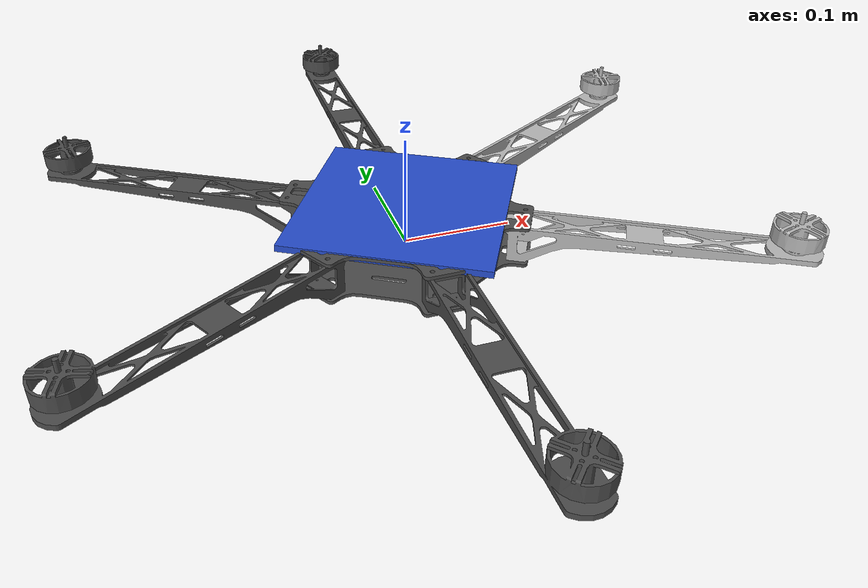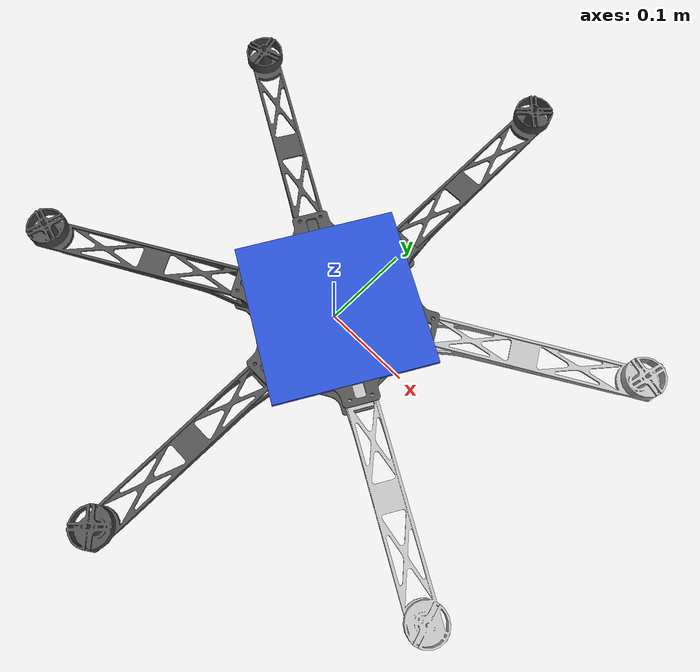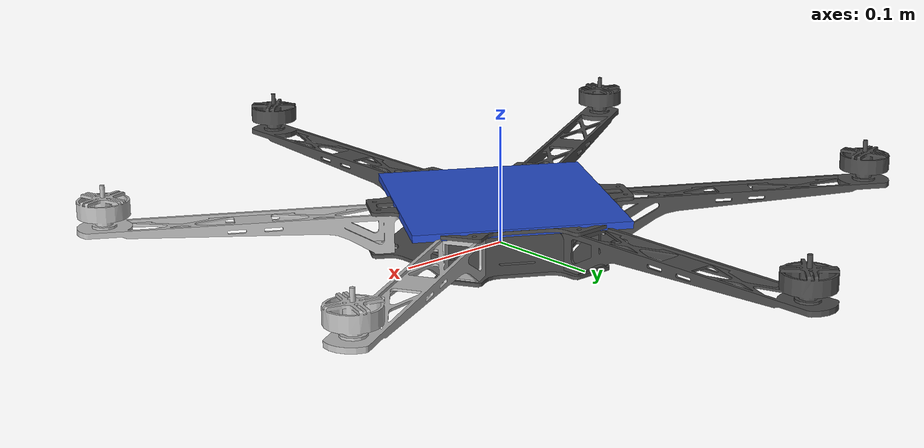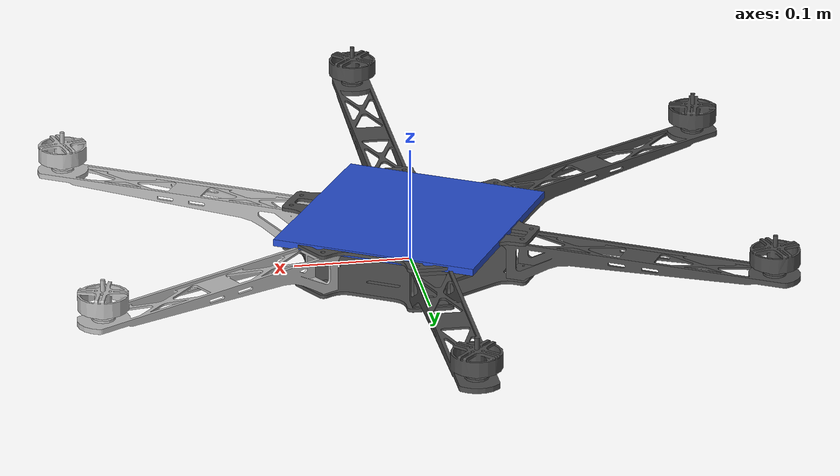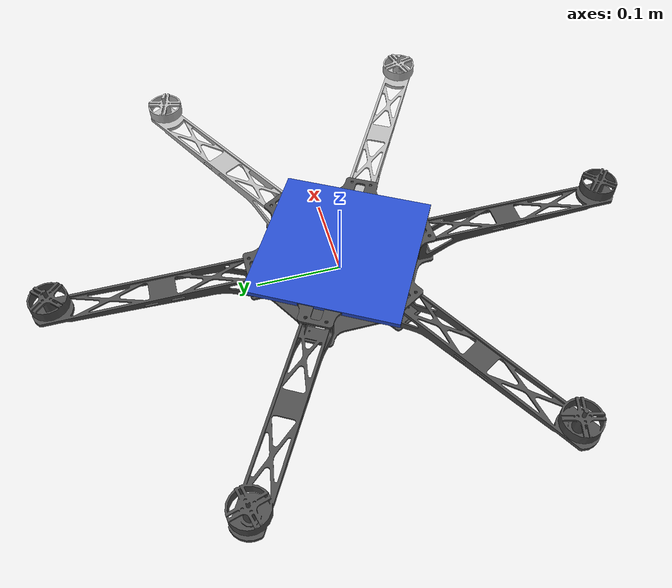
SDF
<?xml version="1.0" ?>
<sdf version="1.5">
  <model name="f550_amazing_dead_blue">
    <static>false</static>
    <pose>0 0 0 0 0 0</pose>

<!-- ######################################## LOWER_PLATE # ######################################## -->
    <link name="base_link">
	<gravity>true</gravity>
	<pose>0 0 0.0015 0 0 0</pose>

      <inertial>
        <mass>0.01</mass>
        <inertia>
          <ixx>0.01</ixx>
          <ixy>0</ixy>
          <ixz>0</ixz>
          <iyy>0.01</iyy>
          <iyz>0</iyz>
          <izz>0.01</izz>
        </inertia>
      </inertial>

      <collision name="base_link_collision">
		<pose>0 0 -0.01 0 0 0</pose>
        <geometry>
			<box>
				<size>0.179 0.179 0.003</size>
			</box>
        </geometry>
			<surface>
				<friction>
					<ode>
						<mu>1</mu>
						<mu2>1</mu2>
					</ode>
				</friction>
				<contact>
					<ode>
						<min_depth>0.001</min_depth>
					</ode>
				</contact>
			</surface>
      </collision>

      <visual name="base_link_visual">
        <geometry>
          <mesh>
            <scale>0.001 0.001 0.001</scale>
            <uri>model://f550_amazing/meshes/Lower_plate_CG.STL</uri>
          </mesh>
        </geometry>
        <material>
          <script>
            <name>Gazebo/DarkGrey</name>
            <uri>file://media/materials/scripts/gazebo.material</uri>
          </script>
        </material>
      </visual>
    </link>
<!-- ####################################### /LOWER_PLATE # ######################################## -->

<!-- ######################################## TOP_PLATE ############################################ -->
    <link name="Top_plate_link">
	<gravity>true</gravity>
	<pose>0 0 0.0375 0 0 2.09439510239</pose>

      <inertial>
        <mass>0.01</mass>
        <inertia>
          <ixx>0.01</ixx>
          <ixy>0</ixy>
          <ixz>0</ixz>
          <iyy>0.01</iyy>
          <iyz>0</iyz>
          <izz>0.01</izz>
        </inertia>
      </inertial>

      <collision name="collision_Top_plate">
        <geometry>
        <mesh>
            <scale>0.001 0.001 0.001</scale>
            <uri>model://f550_amazing/meshes/Top_plate_CG.STL</uri>
          </mesh>
        </geometry>
			<surface>
				<friction>
					<ode>
						<mu>1</mu>
						<mu2>1</mu2>
					</ode>
				</friction>
				<contact>
					<ode>
						<min_depth>0.001</min_depth>
					</ode>
				</contact>
			</surface>
      </collision>

      <visual name="visual_Top_plate">
        <geometry>
          <mesh>
            <scale>0.001 0.001 0.001</scale>
            <uri>model://f550_amazing/meshes/Top_plate_CG.STL</uri>
          </mesh>
        </geometry>
        <material>
          <script>
            <name>Gazebo/DarkGrey</name>
            <uri>file://media/materials/scripts/gazebo.material</uri>
          </script>
        </material>
      </visual>

      <visual name="visual_Top_plate_Blue">
	  <pose>0 0 0 0 0 0.523599</pose>
        <geometry>
			<box>
				<size>0.179 0.179 0.006</size>
			</box>
        </geometry>
          <material>
            <script>
              <name>Gazebo/Blue</name>
              <uri>__default__</uri>
            </script>
            <ambient>0 0 1 1</ambient>
            <diffuse>0 0 1 1</diffuse>
            <specular>0.1 0.1 0.1 1</specular>
            <emissive>0 0 0 1</emissive>
            <shader type='vertex'>
              <normal_map>__default__</normal_map>
            </shader>
          </material>
      </visual>

    </link>

	<joint name='Lower_Top_joint' type='fixed'>
	  	<child>Top_plate_link</child>
	  	<parent>base_link</parent>
	</joint>
<!-- ####################################### /TOP_PLATE ############################################ -->

<!-- ############################################# ARM1 ############################################ -->
    <link name="Arm1_link">
	<gravity>true</gravity>
	<pose>0 0.1874 0.009875004 0 0 1.57079632679</pose>

      <inertial>
        <mass>0.01</mass>
        <inertia>
          <ixx>0.001</ixx>
          <ixy>0</ixy>
          <ixz>0</ixz>
          <iyy>0.001</iyy>
          <iyz>0</iyz>
          <izz>0.001</izz>
        </inertia>
      </inertial>

      <visual name="visual_Arm1">
        <geometry>
          <mesh>
            <scale>0.001 0.001 0.001</scale>
            <uri>model://f550_amazing/meshes/Arm_CG.STL</uri>
          </mesh>
        </geometry>
        <material>
          <script>
            <name>Gazebo/DarkGrey</name>
            <uri>file://media/materials/scripts/gazebo.material</uri>
          </script>
        </material>
      </visual>
    </link>

	<joint name='Lower_Arm1_joint' type='fixed'>
	  	<child>Arm1_link</child>
	  	<parent>base_link</parent>
	</joint>
<!-- ############################################ /ARM1 ############################################ -->

<!-- ############################################# ARM2 ############################################ -->
    <link name="Arm2_link">
	<gravity>true</gravity>
	<pose>0.162293160669 0.0937 0.009875004 0 0 0.523598775598</pose>

      <inertial>
        <mass>0.01</mass>
        <inertia>
          <ixx>0.001</ixx>
          <ixy>0</ixy>
          <ixz>0</ixz>
          <iyy>0.001</iyy>
          <iyz>0</iyz>
          <izz>0.001</izz>
        </inertia>
      </inertial>

      <visual name="visual_Arm2">
        <geometry>
          <mesh>
            <scale>0.001 0.001 0.001</scale>
            <uri>model://f550_amazing/meshes/Arm_CG.STL</uri>
          </mesh>
        </geometry>
      </visual>
    </link>

	<joint name='Lower_Arm2_joint' type='fixed'>
	  	<child>Arm2_link</child>
	  	<parent>base_link</parent>
	</joint>
<!-- ############################################ /ARM2 ############################################ -->

<!-- ############################################# ARM3 ############################################ -->
    <link name="Arm3_link">
	<gravity>true</gravity>
	<pose>0.162293160669 -0.0937 0.009875004 0 0 -0.523598775598</pose>

      <inertial>
        <mass>0.01</mass>
        <inertia>
          <ixx>0.001</ixx>
          <ixy>0</ixy>
          <ixz>0</ixz>
          <iyy>0.001</iyy>
          <iyz>0</iyz>
          <izz>0.001</izz>
        </inertia>
      </inertial>

      <visual name="visual_Arm3">
        <geometry>
          <mesh>
            <scale>0.001 0.001 0.001</scale>
            <uri>model://f550_amazing/meshes/Arm_CG.STL</uri>
          </mesh>
        </geometry>
      </visual>
    </link>

	<joint name='Lower_Arm3_joint' type='fixed'>
	  	<child>Arm3_link</child>
	  	<parent>base_link</parent>
	</joint>
<!-- ############################################ /ARM3 ############################################ -->

<!-- ############################################# ARM4 ############################################ -->
    <link name="Arm4_link">
	<gravity>true</gravity>
	<pose>0 -0.1874 0.009875004 0 0 -1.57079632679</pose>

      <inertial>
        <mass>0.01</mass>
        <inertia>
          <ixx>0.001</ixx>
          <ixy>0</ixy>
          <ixz>0</ixz>
          <iyy>0.001</iyy>
          <iyz>0</iyz>
          <izz>0.001</izz>
        </inertia>
      </inertial>

      <visual name="visual_Arm4">
        <geometry>
          <mesh>
            <scale>0.001 0.001 0.001</scale>
            <uri>model://f550_amazing/meshes/Arm_CG.STL</uri>
          </mesh>
        </geometry>
        <material>
          <script>
            <name>Gazebo/DarkGrey</name>
            <uri>file://media/materials/scripts/gazebo.material</uri>
          </script>
        </material>
      </visual>
    </link>

	<joint name='Lower_Arm4_joint' type='fixed'>
	  	<child>Arm4_link</child>
	  	<parent>base_link</parent>
	</joint>
<!-- ############################################ /ARM4 ############################################ -->

<!-- ############################################# ARM5 ############################################ -->
    <link name="Arm5_link">
	<gravity>true</gravity>
	<pose>-0.162293160669 -0.0937 0.009875004 0 0 3.66519142919</pose>

      <inertial>
        <mass>0.01</mass>
        <inertia>
          <ixx>0.001</ixx>
          <ixy>0</ixy>
          <ixz>0</ixz>
          <iyy>0.001</iyy>
          <iyz>0</iyz>
          <izz>0.001</izz>
        </inertia>
      </inertial>

      <visual name="visual_Arm5">
        <geometry>
          <mesh>
            <scale>0.001 0.001 0.001</scale>
            <uri>model://f550_amazing/meshes/Arm_CG.STL</uri>
          </mesh>
        </geometry>
        <material>
          <script>
            <name>Gazebo/DarkGrey</name>
            <uri>file://media/materials/scripts/gazebo.material</uri>
          </script>
        </material>
      </visual>
    </link>

	<joint name='Lower_Arm5_joint' type='fixed'>
	  	<child>Arm5_link</child>
	  	<parent>base_link</parent>
	</joint>
<!-- ############################################ /ARM5 ############################################ -->

<!-- ############################################# ARM6 ############################################ -->
    <link name="Arm6_link">
	<gravity>true</gravity>
	<pose>-0.162293160669 0.0937 0.009875004 0 0 2.61799387799</pose>

      <inertial>
        <mass>0.01</mass>
        <inertia>
          <ixx>0.001</ixx>
          <ixy>0</ixy>
          <ixz>0</ixz>
          <iyy>0.001</iyy>
          <iyz>0</iyz>
          <izz>0.001</izz>
        </inertia>
      </inertial>

      <visual name="visual_Arm6">
        <geometry>
          <mesh>
            <scale>0.001 0.001 0.001</scale>
            <uri>model://f550_amazing/meshes/Arm_CG.STL</uri>
          </mesh>
        </geometry>
        <material>
          <script>
            <name>Gazebo/DarkGrey</name>
            <uri>file://media/materials/scripts/gazebo.material</uri>
          </script>
        </material>
      </visual>
    </link>

	<joint name='Lower_Arm6_joint' type='fixed'>
	  	<child>Arm6_link</child>
	  	<parent>base_link</parent>
	</joint>
<!-- ############################################ /ARM6 ############################################ -->

  </model>
</sdf>
